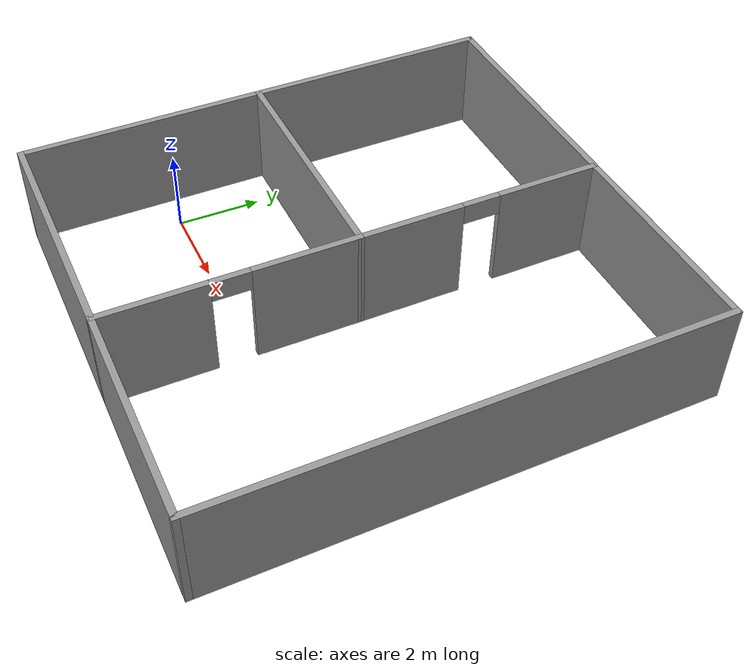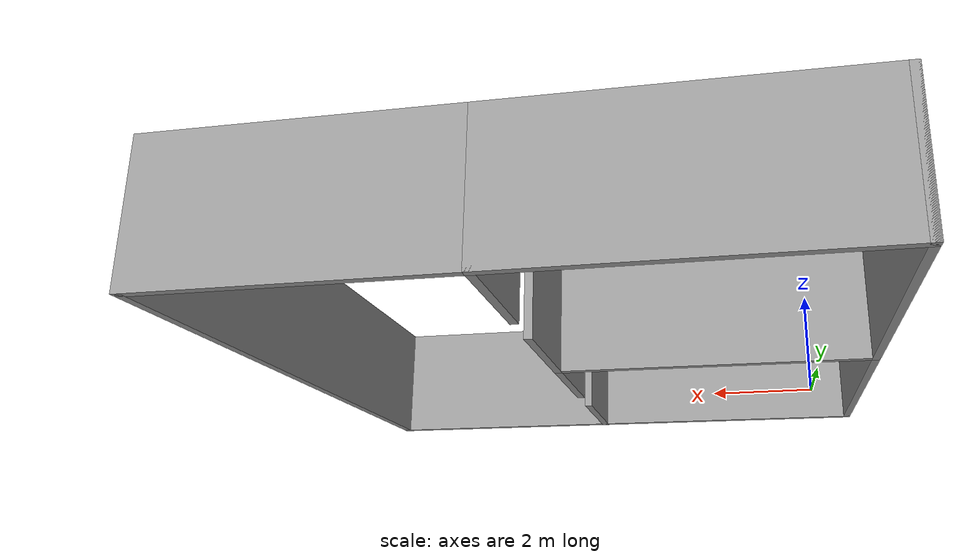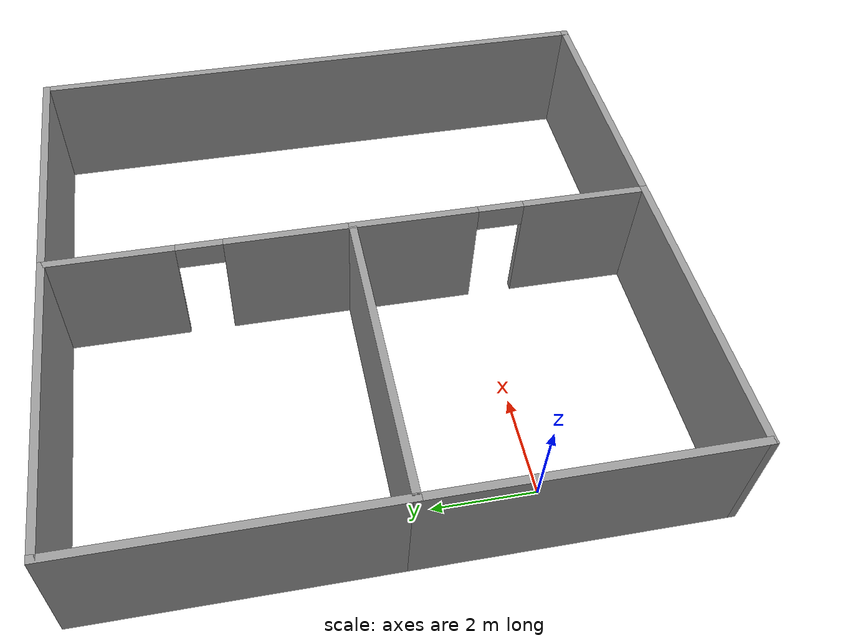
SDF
<?xml version='1.0'?>
<sdf version='1.6'>
  <model name='RGB_room'>
    <pose frame=''>4.5 2.57987 0 0 -0 0</pose>
    <link name='Wall_1'>
      <collision name='Wall_1_Collision'>
        <geometry>
          <box>
            <size>5.98 0.15 2.5</size>
          </box>
        </geometry>
        <pose frame=''>0 0 1.25 0 -0 0</pose>
      </collision>
      <visual name='Wall_1_Visual'>
        <pose frame=''>0 0 1.25 0 -0 0</pose>
        <geometry>
          <box>
            <size>5.98 0.15 2.5</size>
          </box>
        </geometry>
        <material>
          <script>
            <uri>file://media/materials/scripts/gazebo.material</uri>
            <name>Gazebo/Grey</name>
          </script>
          <ambient>1 1 1 1</ambient>
        </material>
        <meta>
          <layer>0</layer>
        </meta>
      </visual>
      <pose frame=''>-2.585 -5.84987 0 0 -0 0</pose>
    </link>
    <link name='Wall_11'>
      <collision name='Wall_11_Collision'>
        <geometry>
          <box>
            <size>6 0.15 2.5</size>
          </box>
        </geometry>
        <pose frame=''>0 0 1.25 0 -0 0</pose>
      </collision>
      <visual name='Wall_11_Visual'>
        <pose frame=''>0 0 1.25 0 -0 0</pose>
        <geometry>
          <box>
            <size>6 0.15 2.5</size>
          </box>
        </geometry>
        <material>
          <script>
            <uri>file://media/materials/scripts/gazebo.material</uri>
            <name>Gazebo/Grey</name>
          </script>
          <ambient>1 1 1 1</ambient>
        </material>
        <meta>
          <layer>0</layer>
        </meta>
      </visual>
      <pose frame=''>-5.5 2.92513 0 0 -0 1.5708</pose>
    </link>
    <link name='Wall_12'>
      <collision name='Wall_12_Collision'>
        <geometry>
          <box>
            <size>6 0.15 2.5</size>
          </box>
        </geometry>
        <pose frame=''>0 0 1.25 0 -0 0</pose>
      </collision>
      <visual name='Wall_12_Visual'>
        <pose frame=''>0 0 1.25 0 -0 0</pose>
        <geometry>
          <box>
            <size>6 0.15 2.5</size>
          </box>
        </geometry>
        <material>
          <script>
            <uri>file://media/materials/scripts/gazebo.material</uri>
            <name>Gazebo/Grey</name>
          </script>
          <ambient>1 1 1 1</ambient>
        </material>
        <meta>
          <layer>0</layer>
        </meta>
      </visual>
      <pose frame=''>-2.575 5.85013 0 0 -0 0</pose>
    </link>
    <link name='Wall_14'>
      <pose frame=''>0.34 -2.92487 0 0 0 -1.57421</pose>
      <visual name='Wall_14_Visual_0'>
        <pose frame=''>-1.72481 0 1.25 0 -0 0</pose>
        <geometry>
          <box>
            <size>2.5504 0.15 2.5</size>
          </box>
        </geometry>
        <material>
          <script>
            <uri>file://media/materials/scripts/gazebo.material</uri>
            <name>Gazebo/Grey</name>
          </script>
          <ambient>1 1 1 1</ambient>
        </material>
        <meta>
          <layer>0</layer>
        </meta>
      </visual>
      <collision name='Wall_14_Collision_0'>
        <geometry>
          <box>
            <size>2.5504 0.15 2.5</size>
          </box>
        </geometry>
        <pose frame=''>-1.72481 0 1.25 0 -0 0</pose>
      </collision>
      <visual name='Wall_14_Visual_1'>
        <pose frame=''>1.7252 0 1.25 0 -0 0</pose>
        <geometry>
          <box>
            <size>2.54963 0.15 2.5</size>
          </box>
        </geometry>
        <material>
          <script>
            <uri>file://media/materials/scripts/gazebo.material</uri>
            <name>Gazebo/Grey</name>
          </script>
          <ambient>1 1 1 1</ambient>
        </material>
        <meta>
          <layer>0</layer>
        </meta>
      </visual>
      <collision name='Wall_14_Collision_1'>
        <geometry>
          <box>
            <size>2.54963 0.15 2.5</size>
          </box>
        </geometry>
        <pose frame=''>1.7252 0 1.25 0 -0 0</pose>
      </collision>
      <visual name='Wall_14_Visual_2'>
        <pose frame=''>0.000387 0 2.25 0 -0 0</pose>
        <geometry>
          <box>
            <size>0.9 0.15 0.5</size>
          </box>
        </geometry>
        <material>
          <script>
            <uri>file://media/materials/scripts/gazebo.material</uri>
            <name>Gazebo/Grey</name>
          </script>
          <ambient>1 1 1 1</ambient>
        </material>
        <meta>
          <layer>0</layer>
        </meta>
      </visual>
      <collision name='Wall_14_Collision_2'>
        <geometry>
          <box>
            <size>0.9 0.15 0.5</size>
          </box>
        </geometry>
        <pose frame=''>0.000387 0 2.25 0 -0 0</pose>
      </collision>
    </link>
    <link name='Wall_16'>
      <collision name='Wall_16_Collision'>
        <geometry>
          <box>
            <size>5.32 0.15 2.5</size>
          </box>
        </geometry>
        <pose frame=''>0 0 1.25 0 -0 0</pose>
      </collision>
      <visual name='Wall_16_Visual'>
        <pose frame=''>0 0 1.25 0 -0 0</pose>
        <geometry>
          <box>
            <size>5.32 0.15 2.5</size>
          </box>
        </geometry>
        <material>
          <script>
            <uri>file://media/materials/scripts/gazebo.material</uri>
            <name>Gazebo/Grey</name>
          </script>
          <ambient>1 1 1 1</ambient>
        </material>
        <meta>
          <layer>0</layer>
        </meta>
      </visual>
      <pose frame=''>2.915 -5.84987 0 0 -0 0</pose>
    </link>
    <link name='Wall_19'>
      <pose frame=''>0.35 2.92513 0 0 0 -1.5708</pose>
      <visual name='Wall_19_Visual_0'>
        <pose frame=''>-1.72814 0 1.25 0 -0 0</pose>
        <geometry>
          <box>
            <size>2.54371 0.15 2.5</size>
          </box>
        </geometry>
        <material>
          <script>
            <uri>file://media/materials/scripts/gazebo.material</uri>
            <name>Gazebo/Grey</name>
          </script>
          <ambient>1 1 1 1</ambient>
        </material>
        <meta>
          <layer>0</layer>
        </meta>
      </visual>
      <collision name='Wall_19_Collision_0'>
        <geometry>
          <box>
            <size>2.54371 0.15 2.5</size>
          </box>
        </geometry>
        <pose frame=''>-1.72814 0 1.25 0 -0 0</pose>
      </collision>
      <visual name='Wall_19_Visual_1'>
        <pose frame=''>1.72186 0 1.25 0 -0 0</pose>
        <geometry>
          <box>
            <size>2.55629 0.15 2.5</size>
          </box>
        </geometry>
        <material>
          <script>
            <uri>file://media/materials/scripts/gazebo.material</uri>
            <name>Gazebo/Grey</name>
          </script>
          <ambient>1 1 1 1</ambient>
        </material>
        <meta>
          <layer>0</layer>
        </meta>
      </visual>
      <collision name='Wall_19_Collision_1'>
        <geometry>
          <box>
            <size>2.55629 0.15 2.5</size>
          </box>
        </geometry>
        <pose frame=''>1.72186 0 1.25 0 -0 0</pose>
      </collision>
      <visual name='Wall_19_Visual_2'>
        <pose frame=''>-0.006289 0 2.25 0 -0 0</pose>
        <geometry>
          <box>
            <size>0.9 0.15 0.5</size>
          </box>
        </geometry>
        <material>
          <script>
            <uri>file://media/materials/scripts/gazebo.material</uri>
            <name>Gazebo/Grey</name>
          </script>
          <ambient>1 1 1 1</ambient>
        </material>
        <meta>
          <layer>0</layer>
        </meta>
      </visual>
      <collision name='Wall_19_Collision_2'>
        <geometry>
          <box>
            <size>0.9 0.15 0.5</size>
          </box>
        </geometry>
        <pose frame=''>-0.006289 0 2.25 0 -0 0</pose>
      </collision>
    </link>
    <link name='Wall_24'>
      <collision name='Wall_24_Collision'>
        <geometry>
          <box>
            <size>5.3 0.15 2.5</size>
          </box>
        </geometry>
        <pose frame=''>0 0 1.25 0 -0 0</pose>
      </collision>
      <visual name='Wall_24_Visual'>
        <pose frame=''>0 0 1.25 0 -0 0</pose>
        <geometry>
          <box>
            <size>5.3 0.15 2.5</size>
          </box>
        </geometry>
        <material>
          <script>
            <uri>file://media/materials/scripts/gazebo.material</uri>
            <name>Gazebo/Grey</name>
          </script>
          <ambient>1 1 1 1</ambient>
        </material>
        <meta>
          <layer>0</layer>
        </meta>
      </visual>
      <pose frame=''>2.925 5.85013 0 0 -0 0</pose>
    </link>
    <link name='Wall_27'>
      <collision name='Wall_27_Collision'>
        <geometry>
          <box>
            <size>11.85 0.15 2.5</size>
          </box>
        </geometry>
        <pose frame=''>0 0 1.25 0 -0 0</pose>
      </collision>
      <visual name='Wall_27_Visual'>
        <pose frame=''>0 0 1.25 0 -0 0</pose>
        <geometry>
          <box>
            <size>11.85 0.15 2.5</size>
          </box>
        </geometry>
        <material>
          <script>
            <uri>file://media/materials/scripts/gazebo.material</uri>
            <name>Gazebo/Grey</name>
          </script>
          <ambient>1 1 1 1</ambient>
        </material>
        <meta>
          <layer>0</layer>
        </meta>
      </visual>
      <pose frame=''>5.5 0.000127 0 0 0 -1.5708</pose>
    </link>
    <link name='Wall_3'>
      <collision name='Wall_3_Collision'>
        <geometry>
          <box>
            <size>6 0.15 2.5</size>
          </box>
        </geometry>
        <pose frame=''>0 0 1.25 0 -0 0</pose>
      </collision>
      <visual name='Wall_3_Visual'>
        <pose frame=''>0 0 1.25 0 -0 0</pose>
        <geometry>
          <box>
            <size>6 0.15 2.5</size>
          </box>
        </geometry>
        <material>
          <script>
            <uri>file://media/materials/scripts/gazebo.material</uri>
            <name>Gazebo/Grey</name>
          </script>
          <ambient>1 1 1 1</ambient>
        </material>
        <meta>
          <layer>0</layer>
        </meta>
      </visual>
      <pose frame=''>-5.5 -2.92487 0 0 -0 1.5708</pose>
    </link>
    <link name='Wall_4'>
      <collision name='Wall_4_Collision'>
        <geometry>
          <box>
            <size>6 0.15 2.5</size>
          </box>
        </geometry>
        <pose frame=''>0 0 1.25 0 -0 0</pose>
      </collision>
      <visual name='Wall_4_Visual'>
        <pose frame=''>0 0 1.25 0 -0 0</pose>
        <geometry>
          <box>
            <size>6 0.15 2.5</size>
          </box>
        </geometry>
        <material>
          <script>
            <uri>file://media/materials/scripts/gazebo.material</uri>
            <name>Gazebo/Grey</name>
          </script>
          <ambient>1 1 1 1</ambient>
        </material>
        <meta>
          <layer>0</layer>
        </meta>
      </visual>
      <pose frame=''>-2.575 0.000127 0 0 -0 0</pose>
    </link>
    <static>1</static>
  </model>
</sdf>
